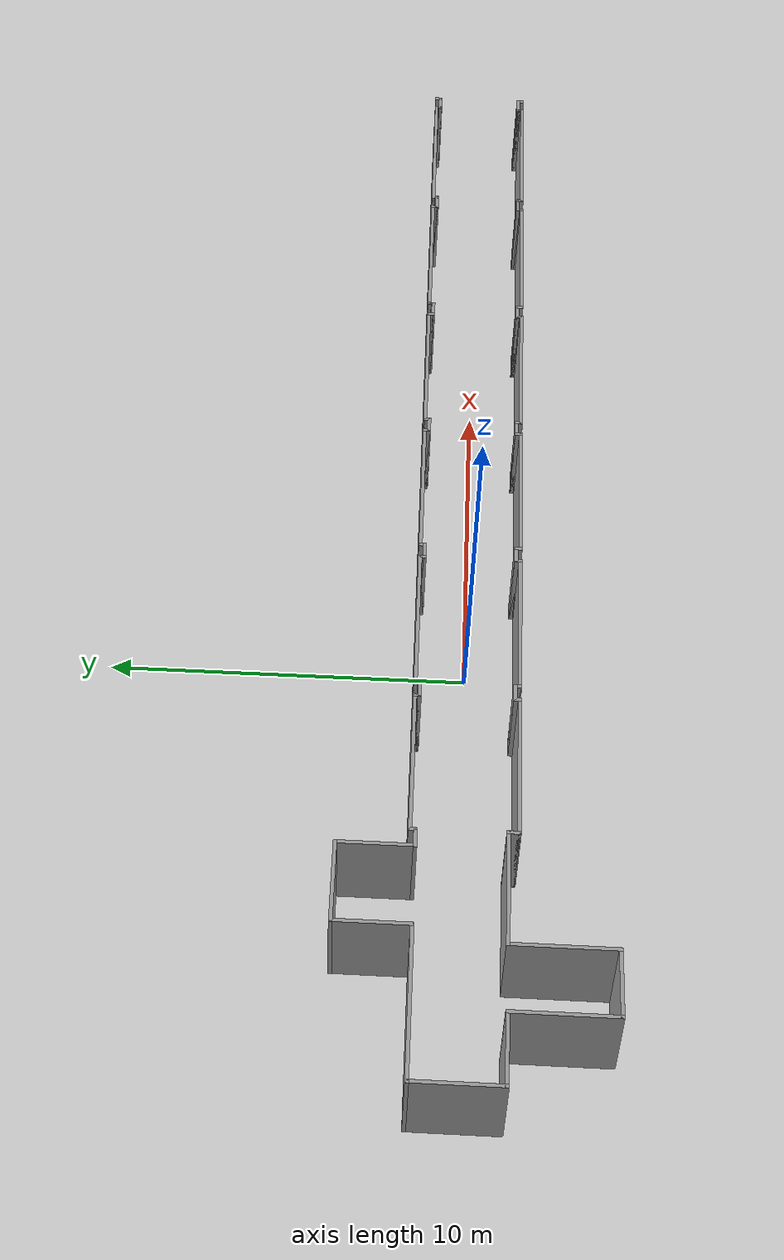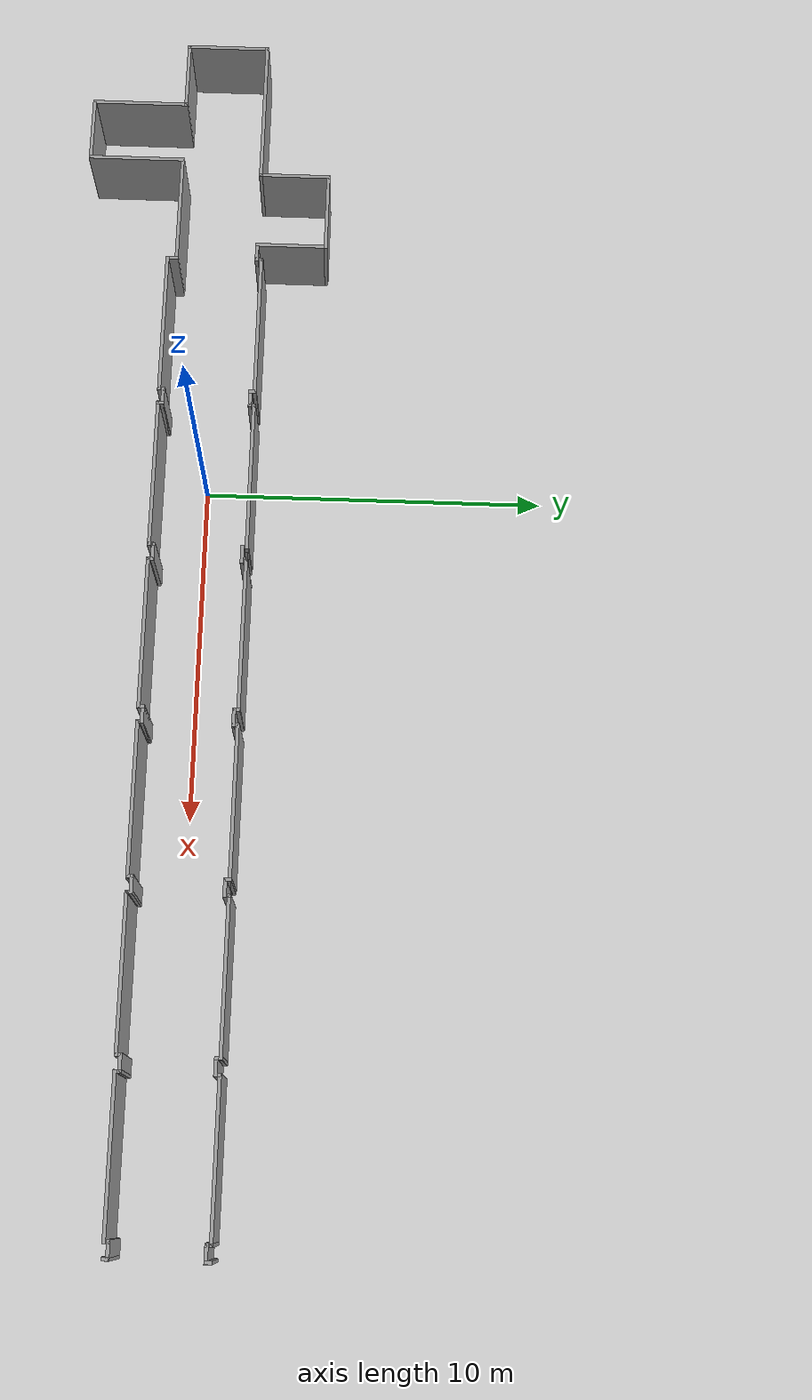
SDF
<sdf version="1.6">
 <world name="default">
  <scene><ambient>0.4 0.4 0.4 1</ambient><background>0.7 0.7 0.7 1</background><shadows>1</shadows></scene>
  <light name="sun" type="directional">
   <pose>0 0 10 0 -0 0</pose>
   <diffuse>0.8 0.8 0.8 1</diffuse>
   <specular>0.1 0.1 0.1 1</specular>
   <attenuation>
    <range>1000</range>
    <constant>0.9</constant>
    <linear>0.01</linear>
    <quadratic>0.001</quadratic>
   </attenuation>
   <direction>-0.5 0.5 -1</direction>
  </light>
  <model name="ground_plane">
   <static>1</static>
   <link name="link">
    <collision name="collision">
     <geometry><plane><normal>0 0 1</normal><size>100 100</size></plane></geometry>
     <surface><friction><ode><mu>100</mu><mu2>50</mu2></ode></friction></surface>
    </collision>
    <visual name="visual">
     <cast_shadows>0</cast_shadows>
     <geometry><plane><normal>0 0 1</normal><size>100 100</size></plane></geometry>
     <material>
      <script><uri>file://media/materials/scripts/gazebo.material</uri><name>Gazebo/Grey</name></script>
     </material>
    </visual>
   </link>
  </model>
  <model name="EE_Build">
   <pose>0 0 0 0 -0 3.14038</pose>
   <model name="EE_Build">
    <pose>5.45213 0.31107 0 0 -0 0</pose>
    <link name="Wall_246">
     <collision name="Wall_246_Collision">
      <geometry><box><size>4.32 0.1 2.6</size></box></geometry>
      <pose>0 0 1.3 0 -0 0</pose>
     </collision>
     <visual name="Wall_246_Visual">
      <pose>0 0 1.3 0 -0 0</pose>
      <geometry><box><size>4.32 0.1 2.6</size></box></geometry>
      <material>
       <script><uri>file://media/materials/scripts/gazebo.material</uri><name>Gazebo/Grey</name></script>
       <ambient>1 1 1 1</ambient>
      </material>
     </visual>
     <pose>-0.960228 1.09491 0 0 -0 0</pose>
    </link>
    <link name="Wall_248">
     <collision name="Wall_248_Collision">
      <geometry><box><size>0.37 0.1 2.6</size></box></geometry>
      <pose>0 0 1.3 0 -0 0</pose>
     </collision>
     <visual name="Wall_248_Visual">
      <pose>0 0 1.3 0 -0 0</pose>
      <geometry><box><size>0.37 0.1 2.6</size></box></geometry>
      <material>
       <script><uri>file://media/materials/scripts/gazebo.material</uri><name>Gazebo/Grey</name></script>
       <ambient>1 1 1 1</ambient>
      </material>
     </visual>
     <pose>1.14977 0.959909 0 0 0 -1.5708</pose>
    </link>
    <link name="Wall_250">
     <collision name="Wall_250_Collision">
      <geometry><box><size>3.38 0.1 2.6</size></box></geometry>
      <pose>0 0 1.3 0 -0 0</pose>
     </collision>
     <visual name="Wall_250_Visual">
      <pose>0 0 1.3 0 -0 0</pose>
      <geometry><box><size>3.38 0.1 2.6</size></box></geometry>
      <material>
       <script><uri>file://media/materials/scripts/gazebo.material</uri><name>Gazebo/Grey</name></script>
       <ambient>1 1 1 1</ambient>
      </material>
     </visual>
     <pose>2.78977 0.824909 0 0 -0 0</pose>
    </link>
    <link name="Wall_253">
     <collision name="Wall_253_Collision">
      <geometry><box><size>0.22 0.1 2.6</size></box></geometry>
      <pose>0 0 1.3 0 -0 0</pose>
     </collision>
     <visual name="Wall_253_Visual">
      <pose>0 0 1.3 0 -0 0</pose>
      <geometry><box><size>0.22 0.1 2.6</size></box></geometry>
      <material>
       <script><uri>file://media/materials/scripts/gazebo.material</uri><name>Gazebo/Grey</name></script>
       <ambient>1 1 1 1</ambient>
      </material>
     </visual>
     <pose>-3.07023 1.03491 0 0 0 -1.5708</pose>
    </link>
    <link name="Wall_262">
     <collision name="Wall_262_Collision">
      <geometry><box><size>0.54 0.1 2.6</size></box></geometry>
      <pose>0 0 1.3 0 -0 0</pose>
     </collision>
     <visual name="Wall_262_Visual">
      <pose>0 0 1.3 0 -0 0</pose>
      <geometry><box><size>0.54 0.1 2.6</size></box></geometry>
      <material>
       <script><uri>file://media/materials/scripts/gazebo.material</uri><name>Gazebo/Grey</name></script>
       <ambient>1 1 1 1</ambient>
      </material>
     </visual>
     <pose>-3.29023 0.974909 0 0 -0 3.14159</pose>
    </link>
    <link name="Wall_270">
     <collision name="Wall_270_Collision">
      <geometry><box><size>0.22 0.1 2.6</size></box></geometry>
      <pose>0 0 1.3 0 -0 0</pose>
     </collision>
     <visual name="Wall_270_Visual">
      <pose>0 0 1.3 0 -0 0</pose>
      <geometry><box><size>0.22 0.1 2.6</size></box></geometry>
      <material>
       <script><uri>file://media/materials/scripts/gazebo.material</uri><name>Gazebo/Grey</name></script>
       <ambient>1 1 1 1</ambient>
      </material>
     </visual>
     <pose>-3.51023 1.03491 0 0 -0 1.5708</pose>
    </link>
    <link name="Wall_272">
     <collision name="Wall_272_Collision">
      <geometry><box><size>4.46 0.1 2.6</size></box></geometry>
      <pose>0 0 1.3 0 -0 0</pose>
     </collision>
     <visual name="Wall_272_Visual">
      <pose>0 0 1.3 0 -0 0</pose>
      <geometry><box><size>4.46 0.1 2.6</size></box></geometry>
      <material>
       <script><uri>file://media/materials/scripts/gazebo.material</uri><name>Gazebo/Grey</name></script>
       <ambient>1 1 1 1</ambient>
      </material>
     </visual>
     <pose>-5.69023 1.09491 0 0 -0 3.14159</pose>
    </link>
    <link name="Wall_274">
     <collision name="Wall_274_Collision">
      <geometry><box><size>0.22 0.1 2.6</size></box></geometry>
      <pose>0 0 1.3 0 -0 0</pose>
     </collision>
     <visual name="Wall_274_Visual">
      <pose>0 0 1.3 0 -0 0</pose>
      <geometry><box><size>0.22 0.1 2.6</size></box></geometry>
      <material>
       <script><uri>file://media/materials/scripts/gazebo.material</uri><name>Gazebo/Grey</name></script>
       <ambient>1 1 1 1</ambient>
      </material>
     </visual>
     <pose>-7.87023 1.03491 0 0 0 -1.5708</pose>
    </link>
    <link name="Wall_276">
     <collision name="Wall_276_Collision">
      <geometry><box><size>2.9 0.1 2.6</size></box></geometry>
      <pose>0 0 1.3 0 -0 0</pose>
     </collision>
     <visual name="Wall_276_Visual">
      <pose>0 0 1.3 0 -0 0</pose>
      <geometry><box><size>2.9 0.1 2.6</size></box></geometry>
      <material>
       <script><uri>file://media/materials/scripts/gazebo.material</uri><name>Gazebo/Grey</name></script>
       <ambient>1 1 1 1</ambient>
      </material>
     </visual>
     <pose>4.42977 2.22491 0 0 -0 1.5708</pose>
    </link>
    <link name="Wall_278">
     <collision name="Wall_278_Collision">
      <geometry><box><size>1.98 0.1 2.6</size></box></geometry>
      <pose>0 0 1.3 0 -0 0</pose>
     </collision>
     <visual name="Wall_278_Visual">
      <pose>0 0 1.3 0 -0 0</pose>
      <geometry><box><size>1.98 0.1 2.6</size></box></geometry>
      <material>
       <script><uri>file://media/materials/scripts/gazebo.material</uri><name>Gazebo/Grey</name></script>
       <ambient>1 1 1 1</ambient>
      </material>
     </visual>
     <pose>5.36977 3.62491 0 0 -0 0</pose>
    </link>
    <link name="Wall_280">
     <collision name="Wall_280_Collision">
      <geometry><box><size>2.9 0.1 2.6</size></box></geometry>
      <pose>0 0 1.3 0 -0 0</pose>
     </collision>
     <visual name="Wall_280_Visual">
      <pose>0 0 1.3 0 -0 0</pose>
      <geometry><box><size>2.9 0.1 2.6</size></box></geometry>
      <material>
       <script><uri>file://media/materials/scripts/gazebo.material</uri><name>Gazebo/Grey</name></script>
       <ambient>1 1 1 1</ambient>
      </material>
     </visual>
     <pose>6.30977 2.22491 0 0 0 -1.5708</pose>
    </link>
    <link name="Wall_282">
     <collision name="Wall_282_Collision">
      <geometry><box><size>2.1 0.1 2.6</size></box></geometry>
      <pose>0 0 1.3 0 -0 0</pose>
     </collision>
     <visual name="Wall_282_Visual">
      <pose>0 0 1.3 0 -0 0</pose>
      <geometry><box><size>2.1 0.1 2.6</size></box></geometry>
      <material>
       <script><uri>file://media/materials/scripts/gazebo.material</uri><name>Gazebo/Grey</name></script>
       <ambient>1 1 1 1</ambient>
      </material>
     </visual>
     <pose>7.31 0.825 0 0 -0 9.1e-05</pose>
    </link>
    <link name="Wall_284">
     <collision name="Wall_284_Collision">
      <geometry><box><size>2.5 0.1 2.6</size></box></geometry>
      <pose>0 0 1.3 0 -0 0</pose>
     </collision>
     <visual name="Wall_284_Visual">
      <pose>0 0 1.3 0 -0 0</pose>
      <geometry><box><size>2.5 0.1 2.6</size></box></geometry>
      <material>
       <script><uri>file://media/materials/scripts/gazebo.material</uri><name>Gazebo/Grey</name></script>
       <ambient>1 1 1 1</ambient>
      </material>
     </visual>
     <pose>8.31023 -0.374909 0 0 0 -1.5708</pose>
    </link>
    <link name="Wall_286">
     <collision name="Wall_286_Collision">
      <geometry><box><size>4.42 0.1 2.6</size></box></geometry>
      <pose>0 0 1.3 0 -0 0</pose>
     </collision>
     <visual name="Wall_286_Visual">
      <pose>0 0 1.3 0 -0 0</pose>
      <geometry><box><size>4.42 0.1 2.6</size></box></geometry>
      <material>
       <script><uri>file://media/materials/scripts/gazebo.material</uri><name>Gazebo/Grey</name></script>
       <ambient>1 1 1 1</ambient>
      </material>
     </visual>
     <pose>6.15023 -1.57491 0 0 -0 3.14159</pose>
    </link>
    <link name="Wall_288">
     <collision name="Wall_288_Collision">
      <geometry><box><size>2.15 0.1 2.6</size></box></geometry>
      <pose>0 0 1.3 0 -0 0</pose>
     </collision>
     <visual name="Wall_288_Visual">
      <pose>0 0 1.3 0 -0 0</pose>
      <geometry><box><size>2.15 0.1 2.6</size></box></geometry>
      <material>
       <script><uri>file://media/materials/scripts/gazebo.material</uri><name>Gazebo/Grey</name></script>
       <ambient>1 1 1 1</ambient>
      </material>
     </visual>
     <pose>3.99023 -2.59991 0 0 0 -1.5708</pose>
    </link>
    <link name="Wall_290">
     <collision name="Wall_290_Collision">
      <geometry><box><size>2.42 0.1 2.6</size></box></geometry>
      <pose>0 0 1.3 0 -0 0</pose>
     </collision>
     <visual name="Wall_290_Visual">
      <pose>0 0 1.3 0 -0 0</pose>
      <geometry><box><size>2.42 0.1 2.6</size></box></geometry>
      <material>
       <script><uri>file://media/materials/scripts/gazebo.material</uri><name>Gazebo/Grey</name></script>
       <ambient>1 1 1 1</ambient>
      </material>
     </visual>
     <pose>2.83023 -3.62491 0 0 -0 3.14159</pose>
    </link>
    <link name="Wall_294">
     <collision name="Wall_294_Collision">
      <geometry><box><size>2.15 0.1 2.6</size></box></geometry>
      <pose>0 0 1.3 0 -0 0</pose>
     </collision>
     <visual name="Wall_294_Visual">
      <pose>0 0 1.3 0 -0 0</pose>
      <geometry><box><size>2.15 0.1 2.6</size></box></geometry>
      <material>
       <script><uri>file://media/materials/scripts/gazebo.material</uri><name>Gazebo/Grey</name></script>
       <ambient>1 1 1 1</ambient>
      </material>
     </visual>
     <pose>1.67023 -2.59991 0 0 -0 1.5708</pose>
    </link>
    <link name="Wall_296">
     <collision name="Wall_296_Collision">
      <geometry><box><size>0.58 0.1 2.6</size></box></geometry>
      <pose>0 0 1.3 0 -0 0</pose>
     </collision>
     <visual name="Wall_296_Visual">
      <pose>0 0 1.3 0 -0 0</pose>
      <geometry><box><size>0.58 0.1 2.6</size></box></geometry>
      <material>
       <script><uri>file://media/materials/scripts/gazebo.material</uri><name>Gazebo/Grey</name></script>
       <ambient>1 1 1 1</ambient>
      </material>
     </visual>
     <pose>1.43023 -1.57491 0 0 -0 3.14159</pose>
    </link>
    <link name="Wall_298">
     <collision name="Wall_298_Collision">
      <geometry><box><size>0.24 0.1 2.6</size></box></geometry>
      <pose>0 0 1.3 0 -0 0</pose>
     </collision>
     <visual name="Wall_298_Visual">
      <pose>0 0 1.3 0 -0 0</pose>
      <geometry><box><size>0.24 0.1 2.6</size></box></geometry>
      <material>
       <script><uri>file://media/materials/scripts/gazebo.material</uri><name>Gazebo/Grey</name></script>
       <ambient>1 1 1 1</ambient>
      </material>
     </visual>
     <pose>1.19023 -1.64491 0 0 0 -1.5708</pose>
    </link>
    <link name="Wall_300">
     <collision name="Wall_300_Collision">
      <geometry><box><size>4.36 0.1 2.6</size></box></geometry>
      <pose>0 0 1.3 0 -0 0</pose>
     </collision>
     <visual name="Wall_300_Visual">
      <pose>0 0 1.3 0 -0 0</pose>
      <geometry><box><size>4.36 0.1 2.6</size></box></geometry>
      <material>
       <script><uri>file://media/materials/scripts/gazebo.material</uri><name>Gazebo/Grey</name></script>
       <ambient>1 1 1 1</ambient>
      </material>
     </visual>
     <pose>-0.939771 -1.71491 0 0 -0 3.14159</pose>
    </link>
    <link name="Wall_302">
     <collision name="Wall_302_Collision">
      <geometry><box><size>0.22 0.1 2.6</size></box></geometry>
      <pose>0 0 1.3 0 -0 0</pose>
     </collision>
     <visual name="Wall_302_Visual">
      <pose>0 0 1.3 0 -0 0</pose>
      <geometry><box><size>0.22 0.1 2.6</size></box></geometry>
      <material>
       <script><uri>file://media/materials/scripts/gazebo.material</uri><name>Gazebo/Grey</name></script>
       <ambient>1 1 1 1</ambient>
      </material>
     </visual>
     <pose>-3.06977 -1.65491 0 0 -0 1.5708</pose>
    </link>
    <link name="Wall_308">
     <collision name="Wall_308_Collision">
      <geometry><box><size>0.54 0.1 2.6</size></box></geometry>
      <pose>0 0 1.3 0 -0 0</pose>
     </collision>
     <visual name="Wall_308_Visual">
      <pose>0 0 1.3 0 -0 0</pose>
      <geometry><box><size>0.54 0.1 2.6</size></box></geometry>
      <material>
       <script><uri>file://media/materials/scripts/gazebo.material</uri><name>Gazebo/Grey</name></script>
       <ambient>1 1 1 1</ambient>
      </material>
     </visual>
     <pose>-3.28977 -1.59491 0 0 -0 3.14159</pose>
    </link>
    <link name="Wall_310">
     <collision name="Wall_310_Collision">
      <geometry><box><size>0.22 0.1 2.6</size></box></geometry>
      <pose>0 0 1.3 0 -0 0</pose>
     </collision>
     <visual name="Wall_310_Visual">
      <pose>0 0 1.3 0 -0 0</pose>
      <geometry><box><size>0.22 0.1 2.6</size></box></geometry>
      <material>
       <script><uri>file://media/materials/scripts/gazebo.material</uri><name>Gazebo/Grey</name></script>
       <ambient>1 1 1 1</ambient>
      </material>
     </visual>
     <pose>-3.50977 -1.65491 0 0 0 -1.5708</pose>
    </link>
    <link name="Wall_312">
     <collision name="Wall_312_Collision">
      <geometry><box><size>4.46 0.1 2.6</size></box></geometry>
      <pose>0 0 1.3 0 -0 0</pose>
     </collision>
     <visual name="Wall_312_Visual">
      <pose>0 0 1.3 0 -0 0</pose>
      <geometry><box><size>4.46 0.1 2.6</size></box></geometry>
      <material>
       <script><uri>file://media/materials/scripts/gazebo.material</uri><name>Gazebo/Grey</name></script>
       <ambient>1 1 1 1</ambient>
      </material>
     </visual>
     <pose>-5.68977 -1.71491 0 0 -0 3.14159</pose>
    </link>
    <link name="Wall_314">
     <collision name="Wall_314_Collision">
      <geometry><box><size>0.22 0.1 2.6</size></box></geometry>
      <pose>0 0 1.3 0 -0 0</pose>
     </collision>
     <visual name="Wall_314_Visual">
      <pose>0 0 1.3 0 -0 0</pose>
      <geometry><box><size>0.22 0.1 2.6</size></box></geometry>
      <material>
       <script><uri>file://media/materials/scripts/gazebo.material</uri><name>Gazebo/Grey</name></script>
       <ambient>1 1 1 1</ambient>
      </material>
     </visual>
     <pose>-7.86977 -1.65491 0 0 -0 1.5708</pose>
    </link>
    <link name="Wall_320">
     <collision name="Wall_320_Collision">
      <geometry><box><size>0.54 0.1 2.6</size></box></geometry>
      <pose>0 0 1.3 0 -0 0</pose>
     </collision>
     <visual name="Wall_320_Visual">
      <pose>0 0 1.3 0 -0 0</pose>
      <geometry><box><size>0.54 0.1 2.6</size></box></geometry>
      <material>
       <script><uri>file://media/materials/scripts/gazebo.material</uri><name>Gazebo/Grey</name></script>
       <ambient>1 1 1 1</ambient>
      </material>
     </visual>
     <pose>-8.09023 0.974909 0 0 -0 3.14159</pose>
    </link>
    <link name="Wall_328">
     <collision name="Wall_328_Collision">
      <geometry><box><size>0.54 0.1 2.6</size></box></geometry>
      <pose>0 0 1.3 0 -0 0</pose>
     </collision>
     <visual name="Wall_328_Visual">
      <pose>0 0 1.3 0 -0 0</pose>
      <geometry><box><size>0.54 0.1 2.6</size></box></geometry>
      <material>
       <script><uri>file://media/materials/scripts/gazebo.material</uri><name>Gazebo/Grey</name></script>
       <ambient>1 1 1 1</ambient>
      </material>
     </visual>
     <pose>-8.08977 -1.59491 0 0 -0 3.14159</pose>
    </link>
    <static>1</static>
   </model>
   <model name="test2">
    <pose>-12.4573 1.34694 0 0 -0 0</pose>
    <link name="Wall_341">
     <collision name="Wall_341_Collision">
      <geometry><box><size>4.46 0.1 2.6</size></box></geometry>
      <pose>0 0 1.3 0 -0 0</pose>
     </collision>
     <visual name="Wall_341_Visual">
      <pose>0 0 1.3 0 -0 0</pose>
      <geometry><box><size>4.46 0.1 2.6</size></box></geometry>
      <material>
       <script><uri>file://media/materials/scripts/gazebo.material</uri><name>Gazebo/Grey</name></script>
       <ambient>1 1 1 1</ambient>
      </material>
     </visual>
     <pose>2.62 0.06 0 0 -0 3.14159</pose>
    </link>
    <link name="Wall_345">
     <collision name="Wall_345_Collision">
      <geometry><box><size>0.22 0.1 2.6</size></box></geometry>
      <pose>0 0 1.3 0 -0 0</pose>
     </collision>
     <visual name="Wall_345_Visual">
      <pose>0 0 1.3 0 -0 0</pose>
      <geometry><box><size>0.22 0.1 2.6</size></box></geometry>
      <material>
       <script><uri>file://media/materials/scripts/gazebo.material</uri><name>Gazebo/Grey</name></script>
       <ambient>1 1 1 1</ambient>
      </material>
     </visual>
     <pose>4.8 0 0 0 0 -1.5708</pose>
    </link>
    <link name="Wall_347">
     <collision name="Wall_347_Collision">
      <geometry><box><size>0.22 0.1 2.6</size></box></geometry>
      <pose>0 0 1.3 0 -0 0</pose>
     </collision>
     <visual name="Wall_347_Visual">
      <pose>0 0 1.3 0 -0 0</pose>
      <geometry><box><size>0.22 0.1 2.6</size></box></geometry>
      <material>
       <script><uri>file://media/materials/scripts/gazebo.material</uri><name>Gazebo/Grey</name></script>
       <ambient>1 1 1 1</ambient>
      </material>
     </visual>
     <pose>0.44 0 0 0 0 -1.5708</pose>
    </link>
    <link name="Wall_361">
     <collision name="Wall_361_Collision">
      <geometry><box><size>0.54 0.1 2.6</size></box></geometry>
      <pose>0 0 1.3 0 -0 0</pose>
     </collision>
     <visual name="Wall_361_Visual">
      <pose>0 0 1.3 0 -0 0</pose>
      <geometry><box><size>0.54 0.1 2.6</size></box></geometry>
      <material>
       <script><uri>file://media/materials/scripts/gazebo.material</uri><name>Gazebo/Grey</name></script>
       <ambient>1 1 1 1</ambient>
      </material>
     </visual>
     <pose>0.22 -0.06 0 0 -0 3.14159</pose>
    </link>
    <link name="Wall_363">
     <collision name="Wall_363_Collision">
      <geometry><box><size>0.22 0.1 2.6</size></box></geometry>
      <pose>0 0 1.3 0 -0 0</pose>
     </collision>
     <visual name="Wall_363_Visual">
      <pose>0 0 1.3 0 -0 0</pose>
      <geometry><box><size>0.22 0.1 2.6</size></box></geometry>
      <material>
       <script><uri>file://media/materials/scripts/gazebo.material</uri><name>Gazebo/Grey</name></script>
       <ambient>1 1 1 1</ambient>
      </material>
     </visual>
     <pose>0 0 0 0 -0 1.5708</pose>
    </link>
    <link name="Wall_366">
     <collision name="Wall_366_Collision">
      <geometry><box><size>4.46 0.1 2.6</size></box></geometry>
      <pose>0 0 1.3 0 -0 0</pose>
     </collision>
     <visual name="Wall_366_Visual">
      <pose>0 0 1.3 0 -0 0</pose>
      <geometry><box><size>4.46 0.1 2.6</size></box></geometry>
      <material>
       <script><uri>file://media/materials/scripts/gazebo.material</uri><name>Gazebo/Grey</name></script>
       <ambient>1 1 1 1</ambient>
      </material>
     </visual>
     <pose>-2.18 0.06 0 0 -0 3.14159</pose>
    </link>
    <link name="Wall_368">
     <collision name="Wall_368_Collision">
      <geometry><box><size>0.22 0.1 2.6</size></box></geometry>
      <pose>0 0 1.3 0 -0 0</pose>
     </collision>
     <visual name="Wall_368_Visual">
      <pose>0 0 1.3 0 -0 0</pose>
      <geometry><box><size>0.22 0.1 2.6</size></box></geometry>
      <material>
       <script><uri>file://media/materials/scripts/gazebo.material</uri><name>Gazebo/Grey</name></script>
       <ambient>1 1 1 1</ambient>
      </material>
     </visual>
     <pose>-4.36 0 0 0 0 -1.5708</pose>
    </link>
    <link name="Wall_370">
     <collision name="Wall_370_Collision">
      <geometry><box><size>0.54 0.1 2.6</size></box></geometry>
      <pose>0 0 1.3 0 -0 0</pose>
     </collision>
     <visual name="Wall_370_Visual">
      <pose>0 0 1.3 0 -0 0</pose>
      <geometry><box><size>0.54 0.1 2.6</size></box></geometry>
      <material>
       <script><uri>file://media/materials/scripts/gazebo.material</uri><name>Gazebo/Grey</name></script>
       <ambient>1 1 1 1</ambient>
      </material>
     </visual>
     <pose>-4.58 -0.06 0 0 -0 3.14159</pose>
    </link>
    <link name="Wall_372">
     <collision name="Wall_372_Collision">
      <geometry><box><size>0.22 0.1 2.6</size></box></geometry>
      <pose>0 0 1.3 0 -0 0</pose>
     </collision>
     <visual name="Wall_372_Visual">
      <pose>0 0 1.3 0 -0 0</pose>
      <geometry><box><size>0.22 0.1 2.6</size></box></geometry>
      <material>
       <script><uri>file://media/materials/scripts/gazebo.material</uri><name>Gazebo/Grey</name></script>
       <ambient>1 1 1 1</ambient>
      </material>
     </visual>
     <pose>-4.8 0 0 0 -0 1.5708</pose>
    </link>
    <link name="Wall_375">
     <collision name="Wall_375_Collision">
      <geometry><box><size>4.46 0.1 2.6</size></box></geometry>
      <pose>0 0 1.3 0 -0 0</pose>
     </collision>
     <visual name="Wall_375_Visual">
      <pose>0 0 1.3 0 -0 0</pose>
      <geometry><box><size>4.46 0.1 2.6</size></box></geometry>
      <material>
       <script><uri>file://media/materials/scripts/gazebo.material</uri><name>Gazebo/Grey</name></script>
       <ambient>1 1 1 1</ambient>
      </material>
     </visual>
     <pose>-6.98 0.06 0 0 -0 3.14159</pose>
    </link>
    <link name="Wall_377">
     <collision name="Wall_377_Collision">
      <geometry><box><size>0.22 0.1 2.6</size></box></geometry>
      <pose>0 0 1.3 0 -0 0</pose>
     </collision>
     <visual name="Wall_377_Visual">
      <pose>0 0 1.3 0 -0 0</pose>
      <geometry><box><size>0.22 0.1 2.6</size></box></geometry>
      <material>
       <script><uri>file://media/materials/scripts/gazebo.material</uri><name>Gazebo/Grey</name></script>
       <ambient>1 1 1 1</ambient>
      </material>
     </visual>
     <pose>-9.16 0 0 0 0 -1.5708</pose>
    </link>
    <link name="Wall_380">
     <collision name="Wall_380_Collision">
      <geometry><box><size>0.54 0.1 2.6</size></box></geometry>
      <pose>0 0 1.3 0 -0 0</pose>
     </collision>
     <visual name="Wall_380_Visual">
      <pose>0 0 1.3 0 -0 0</pose>
      <geometry><box><size>0.54 0.1 2.6</size></box></geometry>
      <material>
       <script><uri>file://media/materials/scripts/gazebo.material</uri><name>Gazebo/Grey</name></script>
       <ambient>1 1 1 1</ambient>
      </material>
     </visual>
     <pose>-9.38 -0.06 0 0 -0 3.14159</pose>
    </link>
    <link name="Wall_383">
     <collision name="Wall_383_Collision">
      <geometry><box><size>0.22 0.1 2.6</size></box></geometry>
      <pose>0 0 1.3 0 -0 0</pose>
     </collision>
     <visual name="Wall_383_Visual">
      <pose>0 0 1.3 0 -0 0</pose>
      <geometry><box><size>0.22 0.1 2.6</size></box></geometry>
      <material>
       <script><uri>file://media/materials/scripts/gazebo.material</uri><name>Gazebo/Grey</name></script>
       <ambient>1 1 1 1</ambient>
      </material>
     </visual>
     <pose>-9.6 0 0 0 -0 1.5708</pose>
    </link>
    <link name="Wall_388">
     <collision name="Wall_388_Collision">
      <geometry><box><size>0.54 0.1 2.6</size></box></geometry>
      <pose>0 0 1.3 0 -0 0</pose>
     </collision>
     <visual name="Wall_388_Visual">
      <pose>0 0 1.3 0 -0 0</pose>
      <geometry><box><size>0.54 0.1 2.6</size></box></geometry>
      <material>
       <script><uri>file://media/materials/scripts/gazebo.material</uri><name>Gazebo/Grey</name></script>
       <ambient>1 1 1 1</ambient>
      </material>
     </visual>
     <pose>5.02 -0.06 0 0 -0 0</pose>
    </link>
    <link name="Wall_390">
     <collision name="Wall_390_Collision">
      <geometry><box><size>0.22 0.1 2.6</size></box></geometry>
      <pose>0 0 1.3 0 -0 0</pose>
     </collision>
     <visual name="Wall_390_Visual">
      <pose>0 0 1.3 0 -0 0</pose>
      <geometry><box><size>0.22 0.1 2.6</size></box></geometry>
      <material>
       <script><uri>file://media/materials/scripts/gazebo.material</uri><name>Gazebo/Grey</name></script>
       <ambient>1 1 1 1</ambient>
      </material>
     </visual>
     <pose>5.24 0 0 0 -0 1.5708</pose>
    </link>
    <link name="Wall_393">
     <collision name="Wall_393_Collision">
      <geometry><box><size>4.46 0.1 2.6</size></box></geometry>
      <pose>0 0 1.3 0 -0 0</pose>
     </collision>
     <visual name="Wall_393_Visual">
      <pose>0 0 1.3 0 -0 0</pose>
      <geometry><box><size>4.46 0.1 2.6</size></box></geometry>
      <material>
       <script><uri>file://media/materials/scripts/gazebo.material</uri><name>Gazebo/Grey</name></script>
       <ambient>1 1 1 1</ambient>
      </material>
     </visual>
     <pose>7.42 0.06 0 0 -0 0</pose>
    </link>
    <link name="Wall_395">
     <collision name="Wall_395_Collision">
      <geometry><box><size>0.22 0.1 2.6</size></box></geometry>
      <pose>0 0 1.3 0 -0 0</pose>
     </collision>
     <visual name="Wall_395_Visual">
      <pose>0 0 1.3 0 -0 0</pose>
      <geometry><box><size>0.22 0.1 2.6</size></box></geometry>
      <material>
       <script><uri>file://media/materials/scripts/gazebo.material</uri><name>Gazebo/Grey</name></script>
       <ambient>1 1 1 1</ambient>
      </material>
     </visual>
     <pose>9.6 0 0 0 0 -1.5708</pose>
    </link>
    <static>1</static>
   </model>
   <model name="test3">
    <pose>-12.4572 -1.34482 0 0 -0 0</pose>
    <link name="Wall_366">
     <collision name="Wall_366_Collision">
      <geometry><box><size>4.46 0.1 2.6</size></box></geometry>
      <pose>0 0 1.3 0 -0 0</pose>
     </collision>
     <visual name="Wall_366_Visual">
      <pose>0 0 1.3 0 -0 0</pose>
      <geometry><box><size>4.46 0.1 2.6</size></box></geometry>
      <material>
       <script><uri>file://media/materials/scripts/gazebo.material</uri><name>Gazebo/Grey</name></script>
       <ambient>1 1 1 1</ambient>
      </material>
     </visual>
     <pose>-2.18 -0.06 0 0 -0 3.14159</pose>
    </link>
    <link name="Wall_375">
     <collision name="Wall_375_Collision">
      <geometry><box><size>4.46 0.1 2.6</size></box></geometry>
      <pose>0 0 1.3 0 -0 0</pose>
     </collision>
     <visual name="Wall_375_Visual">
      <pose>0 0 1.3 0 -0 0</pose>
      <geometry><box><size>4.46 0.1 2.6</size></box></geometry>
      <material>
       <script><uri>file://media/materials/scripts/gazebo.material</uri><name>Gazebo/Grey</name></script>
       <ambient>1 1 1 1</ambient>
      </material>
     </visual>
     <pose>-6.98 -0.06 0 0 -0 3.14159</pose>
    </link>
    <link name="Wall_393">
     <collision name="Wall_393_Collision">
      <geometry><box><size>4.46 0.1 2.6</size></box></geometry>
      <pose>0 0 1.3 0 -0 0</pose>
     </collision>
     <visual name="Wall_393_Visual">
      <pose>0 0 1.3 0 -0 0</pose>
      <geometry><box><size>4.46 0.1 2.6</size></box></geometry>
      <material>
       <script><uri>file://media/materials/scripts/gazebo.material</uri><name>Gazebo/Grey</name></script>
       <ambient>1 1 1 1</ambient>
      </material>
     </visual>
     <pose>7.42 -0.06 0 0 -0 0</pose>
    </link>
    <link name="Wall_397">
     <collision name="Wall_397_Collision">
      <geometry><box><size>0.22 0.1 2.6</size></box></geometry>
      <pose>0 0 1.3 0 -0 0</pose>
     </collision>
     <visual name="Wall_397_Visual">
      <pose>0 0 1.3 0 -0 0</pose>
      <geometry><box><size>0.22 0.1 2.6</size></box></geometry>
      <material>
       <script><uri>file://media/materials/scripts/gazebo.material</uri><name>Gazebo/Grey</name></script>
       <ambient>1 1 1 1</ambient>
      </material>
     </visual>
     <pose>9.6 0 0 0 -0 1.5708</pose>
    </link>
    <link name="Wall_399">
     <collision name="Wall_399_Collision">
      <geometry><box><size>0.22 0.1 2.6</size></box></geometry>
      <pose>0 0 1.3 0 -0 0</pose>
     </collision>
     <visual name="Wall_399_Visual">
      <pose>0 0 1.3 0 -0 0</pose>
      <geometry><box><size>0.22 0.1 2.6</size></box></geometry>
      <material>
       <script><uri>file://media/materials/scripts/gazebo.material</uri><name>Gazebo/Grey</name></script>
       <ambient>1 1 1 1</ambient>
      </material>
     </visual>
     <pose>5.24 0 0 0 -0 1.5708</pose>
    </link>
    <link name="Wall_405">
     <collision name="Wall_405_Collision">
      <geometry><box><size>0.54 0.1 2.6</size></box></geometry>
      <pose>0 0 1.3 0 -0 0</pose>
     </collision>
     <visual name="Wall_405_Visual">
      <pose>0 0 1.3 0 -0 0</pose>
      <geometry><box><size>0.54 0.1 2.6</size></box></geometry>
      <material>
       <script><uri>file://media/materials/scripts/gazebo.material</uri><name>Gazebo/Grey</name></script>
       <ambient>1 1 1 1</ambient>
      </material>
     </visual>
     <pose>5.02 0.06 0 0 -0 3.14159</pose>
    </link>
    <link name="Wall_407">
     <collision name="Wall_407_Collision">
      <geometry><box><size>0.22 0.1 2.6</size></box></geometry>
      <pose>0 0 1.3 0 -0 0</pose>
     </collision>
     <visual name="Wall_407_Visual">
      <pose>0 0 1.3 0 -0 0</pose>
      <geometry><box><size>0.22 0.1 2.6</size></box></geometry>
      <material>
       <script><uri>file://media/materials/scripts/gazebo.material</uri><name>Gazebo/Grey</name></script>
       <ambient>1 1 1 1</ambient>
      </material>
     </visual>
     <pose>4.8 0 0 0 0 -1.5708</pose>
    </link>
    <link name="Wall_411">
     <collision name="Wall_411_Collision">
      <geometry><box><size>4.46 0.1 2.6</size></box></geometry>
      <pose>0 0 1.3 0 -0 0</pose>
     </collision>
     <visual name="Wall_411_Visual">
      <pose>0 0 1.3 0 -0 0</pose>
      <geometry><box><size>4.46 0.1 2.6</size></box></geometry>
      <material>
       <script><uri>file://media/materials/scripts/gazebo.material</uri><name>Gazebo/Grey</name></script>
       <ambient>1 1 1 1</ambient>
      </material>
     </visual>
     <pose>2.62 -0.06 0 0 -0 3.14159</pose>
    </link>
    <link name="Wall_413">
     <collision name="Wall_413_Collision">
      <geometry><box><size>0.22 0.1 2.6</size></box></geometry>
      <pose>0 0 1.3 0 -0 0</pose>
     </collision>
     <visual name="Wall_413_Visual">
      <pose>0 0 1.3 0 -0 0</pose>
      <geometry><box><size>0.22 0.1 2.6</size></box></geometry>
      <material>
       <script><uri>file://media/materials/scripts/gazebo.material</uri><name>Gazebo/Grey</name></script>
       <ambient>1 1 1 1</ambient>
      </material>
     </visual>
     <pose>0.44 0 0 0 -0 1.5708</pose>
    </link>
    <link name="Wall_415">
     <collision name="Wall_415_Collision">
      <geometry><box><size>0.22 0.1 2.6</size></box></geometry>
      <pose>0 0 1.3 0 -0 0</pose>
     </collision>
     <visual name="Wall_415_Visual">
      <pose>0 0 1.3 0 -0 0</pose>
      <geometry><box><size>0.22 0.1 2.6</size></box></geometry>
      <material>
       <script><uri>file://media/materials/scripts/gazebo.material</uri><name>Gazebo/Grey</name></script>
       <ambient>1 1 1 1</ambient>
      </material>
     </visual>
     <pose>0 0 0 0 -0 1.5708</pose>
    </link>
    <link name="Wall_423">
     <collision name="Wall_423_Collision">
      <geometry><box><size>0.54 0.1 2.6</size></box></geometry>
      <pose>0 0 1.3 0 -0 0</pose>
     </collision>
     <visual name="Wall_423_Visual">
      <pose>0 0 1.3 0 -0 0</pose>
      <geometry><box><size>0.54 0.1 2.6</size></box></geometry>
      <material>
       <script><uri>file://media/materials/scripts/gazebo.material</uri><name>Gazebo/Grey</name></script>
       <ambient>1 1 1 1</ambient>
      </material>
     </visual>
     <pose>0.22 0.06 0 0 -0 3.14159</pose>
    </link>
    <link name="Wall_425">
     <collision name="Wall_425_Collision">
      <geometry><box><size>0.22 0.1 2.6</size></box></geometry>
      <pose>0 0 1.3 0 -0 0</pose>
     </collision>
     <visual name="Wall_425_Visual">
      <pose>0 0 1.3 0 -0 0</pose>
      <geometry><box><size>0.22 0.1 2.6</size></box></geometry>
      <material>
       <script><uri>file://media/materials/scripts/gazebo.material</uri><name>Gazebo/Grey</name></script>
       <ambient>1 1 1 1</ambient>
      </material>
     </visual>
     <pose>-4.36 0 0 0 -0 1.5708</pose>
    </link>
    <link name="Wall_427">
     <collision name="Wall_427_Collision">
      <geometry><box><size>0.22 0.1 2.6</size></box></geometry>
      <pose>0 0 1.3 0 -0 0</pose>
     </collision>
     <visual name="Wall_427_Visual">
      <pose>0 0 1.3 0 -0 0</pose>
      <geometry><box><size>0.22 0.1 2.6</size></box></geometry>
      <material>
       <script><uri>file://media/materials/scripts/gazebo.material</uri><name>Gazebo/Grey</name></script>
       <ambient>1 1 1 1</ambient>
      </material>
     </visual>
     <pose>-4.8 0 0 0 -0 1.5708</pose>
    </link>
    <link name="Wall_429">
     <collision name="Wall_429_Collision">
      <geometry><box><size>0.54 0.1 2.6</size></box></geometry>
      <pose>0 0 1.3 0 -0 0</pose>
     </collision>
     <visual name="Wall_429_Visual">
      <pose>0 0 1.3 0 -0 0</pose>
      <geometry><box><size>0.54 0.1 2.6</size></box></geometry>
      <material>
       <script><uri>file://media/materials/scripts/gazebo.material</uri><name>Gazebo/Grey</name></script>
       <ambient>1 1 1 1</ambient>
      </material>
     </visual>
     <pose>-4.58 0.06 0 0 -0 0</pose>
    </link>
    <link name="Wall_431">
     <collision name="Wall_431_Collision">
      <geometry><box><size>0.22 0.1 2.6</size></box></geometry>
      <pose>0 0 1.3 0 -0 0</pose>
     </collision>
     <visual name="Wall_431_Visual">
      <pose>0 0 1.3 0 -0 0</pose>
      <geometry><box><size>0.22 0.1 2.6</size></box></geometry>
      <material>
       <script><uri>file://media/materials/scripts/gazebo.material</uri><name>Gazebo/Grey</name></script>
       <ambient>1 1 1 1</ambient>
      </material>
     </visual>
     <pose>-9.16 0 0 0 -0 1.5708</pose>
    </link>
    <link name="Wall_433">
     <collision name="Wall_433_Collision">
      <geometry><box><size>0.54 0.1 2.6</size></box></geometry>
      <pose>0 0 1.3 0 -0 0</pose>
     </collision>
     <visual name="Wall_433_Visual">
      <pose>0 0 1.3 0 -0 0</pose>
      <geometry><box><size>0.54 0.1 2.6</size></box></geometry>
      <material>
       <script><uri>file://media/materials/scripts/gazebo.material</uri><name>Gazebo/Grey</name></script>
       <ambient>1 1 1 1</ambient>
      </material>
     </visual>
     <pose>-9.38 0.06 0 0 -0 3.14159</pose>
    </link>
    <link name="Wall_435">
     <collision name="Wall_435_Collision">
      <geometry><box><size>0.22 0.1 2.6</size></box></geometry>
      <pose>0 0 1.3 0 -0 0</pose>
     </collision>
     <visual name="Wall_435_Visual">
      <pose>0 0 1.3 0 -0 0</pose>
      <geometry><box><size>0.22 0.1 2.6</size></box></geometry>
      <material>
       <script><uri>file://media/materials/scripts/gazebo.material</uri><name>Gazebo/Grey</name></script>
       <ambient>1 1 1 1</ambient>
      </material>
     </visual>
     <pose>-9.6 0 0 0 0 -1.5708</pose>
    </link>
    <static>1</static>
   </model>
   <static>0</static>
  </model>
  <physics name="default_physics" default="0" type="ode">
   <real_time_update_rate>1000</real_time_update_rate>
   <max_step_size>0.001</max_step_size>
   <real_time_factor>1</real_time_factor>
   <ode>
    <solver>
     <type>quick</type>
     <iters>150</iters>
     <precon_iters>0</precon_iters>
     <sor>1.4</sor>
     <use_dynamic_moi_rescaling>1</use_dynamic_moi_rescaling>
    </solver>
    <constraints>
     <cfm>1e-05</cfm>
     <erp>0.2</erp>
     <contact_max_correcting_vel>2000</contact_max_correcting_vel>
     <contact_surface_layer>0.01</contact_surface_layer>
    </constraints>
   </ode>
  </physics>
  <gravity>0 0 -9.8</gravity>
  <magnetic_field>6e-06 2.3e-05 -4.2e-05</magnetic_field>
  <atmosphere type="adiabatic"/>
  <spherical_coordinates>
   <surface_model>EARTH_WGS84</surface_model>
   <latitude_deg>0</latitude_deg>
   <longitude_deg>0</longitude_deg>
   <elevation>0</elevation>
   <heading_deg>0</heading_deg>
  </spherical_coordinates>
 </world>
</sdf>
